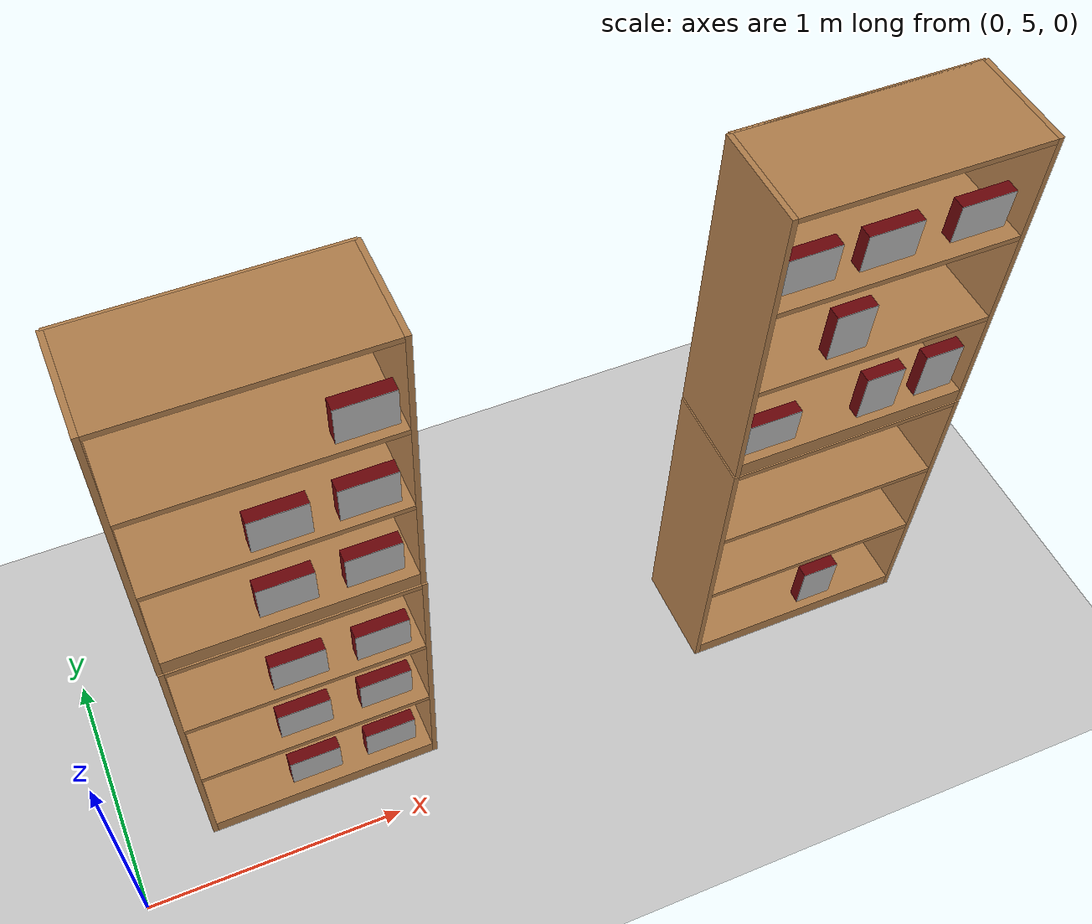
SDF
<sdf version="1.7">
 <world name="default">
  <model name="ground_plane">
   <static>1</static>
   <link name="link">
    <collision name="collision">
     <geometry><plane><normal>0 0 1</normal><size>100 100</size></plane></geometry>
     <surface><friction><ode><mu>100</mu><mu2>50</mu2></ode></friction></surface>
    </collision>
    <visual name="visual">
     <cast_shadows>0</cast_shadows>
     <geometry><plane><normal>0 0 1</normal><size>100 100</size></plane></geometry>
     <material>
      <script><uri>file://media/materials/scripts/gazebo.material</uri><name>Gazebo/Grey</name></script>
     </material>
    </visual>
   </link>
  </model>
  <model name="bookshelf">
   <static>1</static>
   <link name="link">
    <inertial><mass>1</mass></inertial>
    <collision name="back">
     <pose>0 0.005 0.6 0 -0 0</pose>
     <geometry><box><size>0.9 0.01 1.2</size></box></geometry>
    </collision>
    <visual name="visual1">
     <pose>0 0.005 0.6 0 -0 0</pose>
     <geometry><box><size>0.9 0.01 1.2</size></box></geometry>
     <material>
      <script><uri>file://media/materials/scripts/gazebo.material</uri><name>Gazebo/Wood</name></script>
     </material>
    </visual>
    <collision name="left_side">
     <pose>0.45 -0.195 0.6 0 -0 0</pose>
     <geometry><box><size>0.02 0.4 1.2</size></box></geometry>
    </collision>
    <visual name="visual2">
     <pose>0.45 -0.195 0.6 0 -0 0</pose>
     <geometry><box><size>0.02 0.4 1.2</size></box></geometry>
     <material>
      <script><uri>file://media/materials/scripts/gazebo.material</uri><name>Gazebo/Wood</name></script>
     </material>
    </visual>
    <collision name="right_side">
     <pose>-0.45 -0.195 0.6 0 -0 0</pose>
     <geometry><box><size>0.02 0.4 1.2</size></box></geometry>
    </collision>
    <visual name="visual3">
     <pose>-0.45 -0.195 0.6 0 -0 0</pose>
     <geometry><box><size>0.02 0.4 1.2</size></box></geometry>
     <material>
      <script><uri>file://media/materials/scripts/gazebo.material</uri><name>Gazebo/Wood</name></script>
     </material>
    </visual>
    <collision name="bottom">
     <pose>0 -0.195 0.03 0 -0 0</pose>
     <geometry><box><size>0.88 0.4 0.06</size></box></geometry>
    </collision>
    <visual name="visual4">
     <pose>0 -0.195 0.03 0 -0 0</pose>
     <geometry><box><size>0.88 0.4 0.06</size></box></geometry>
     <material>
      <script><uri>file://media/materials/scripts/gazebo.material</uri><name>Gazebo/Wood</name></script>
     </material>
    </visual>
    <collision name="top">
     <pose>0 -0.195 1.19 0 -0 0</pose>
     <geometry><box><size>0.88 0.4 0.02</size></box></geometry>
    </collision>
    <visual name="visual5">
     <pose>0 -0.195 1.19 0 -0 0</pose>
     <geometry><box><size>0.88 0.4 0.02</size></box></geometry>
     <material>
      <script><uri>file://media/materials/scripts/gazebo.material</uri><name>Gazebo/Wood</name></script>
     </material>
    </visual>
    <collision name="low_shelf">
     <pose>0 -0.195 0.43 0 -0 0</pose>
     <geometry><box><size>0.88 0.4 0.02</size></box></geometry>
    </collision>
    <visual name="visual6">
     <pose>0 -0.195 0.43 0 -0 0</pose>
     <geometry><box><size>0.88 0.4 0.02</size></box></geometry>
     <material>
      <script><uri>file://media/materials/scripts/gazebo.material</uri><name>Gazebo/Wood</name></script>
     </material>
    </visual>
    <collision name="high_shelf">
     <pose>0 -0.195 0.8 0 -0 0</pose>
     <geometry><box><size>0.88 0.4 0.02</size></box></geometry>
    </collision>
    <visual name="visual7">
     <pose>0 -0.195 0.8 0 -0 0</pose>
     <geometry><box><size>0.88 0.4 0.02</size></box></geometry>
     <material>
      <script><uri>file://media/materials/scripts/gazebo.material</uri><name>Gazebo/Wood</name></script>
     </material>
    </visual>
   </link>
   <pose>2.83268 5.58259 0 0 -0 0</pose>
  </model>
  <model name="bookshelf_1">
   <static>1</static>
   <link name="link">
    <inertial><mass>1</mass></inertial>
    <collision name="back">
     <pose>0 0.005 0.6 0 -0 0</pose>
     <geometry><box><size>0.9 0.01 1.2</size></box></geometry>
    </collision>
    <visual name="visual1">
     <pose>0 0.005 0.6 0 -0 0</pose>
     <geometry><box><size>0.9 0.01 1.2</size></box></geometry>
     <material>
      <script><uri>file://media/materials/scripts/gazebo.material</uri><name>Gazebo/Wood</name></script>
     </material>
    </visual>
    <collision name="left_side">
     <pose>0.45 -0.195 0.6 0 -0 0</pose>
     <geometry><box><size>0.02 0.4 1.2</size></box></geometry>
    </collision>
    <visual name="visual2">
     <pose>0.45 -0.195 0.6 0 -0 0</pose>
     <geometry><box><size>0.02 0.4 1.2</size></box></geometry>
     <material>
      <script><uri>file://media/materials/scripts/gazebo.material</uri><name>Gazebo/Wood</name></script>
     </material>
    </visual>
    <collision name="right_side">
     <pose>-0.45 -0.195 0.6 0 -0 0</pose>
     <geometry><box><size>0.02 0.4 1.2</size></box></geometry>
    </collision>
    <visual name="visual3">
     <pose>-0.45 -0.195 0.6 0 -0 0</pose>
     <geometry><box><size>0.02 0.4 1.2</size></box></geometry>
     <material>
      <script><uri>file://media/materials/scripts/gazebo.material</uri><name>Gazebo/Wood</name></script>
     </material>
    </visual>
    <collision name="bottom">
     <pose>0 -0.195 0.03 0 -0 0</pose>
     <geometry><box><size>0.88 0.4 0.06</size></box></geometry>
    </collision>
    <visual name="visual4">
     <pose>0 -0.195 0.03 0 -0 0</pose>
     <geometry><box><size>0.88 0.4 0.06</size></box></geometry>
     <material>
      <script><uri>file://media/materials/scripts/gazebo.material</uri><name>Gazebo/Wood</name></script>
     </material>
    </visual>
    <collision name="top">
     <pose>0 -0.195 1.19 0 -0 0</pose>
     <geometry><box><size>0.88 0.4 0.02</size></box></geometry>
    </collision>
    <visual name="visual5">
     <pose>0 -0.195 1.19 0 -0 0</pose>
     <geometry><box><size>0.88 0.4 0.02</size></box></geometry>
     <material>
      <script><uri>file://media/materials/scripts/gazebo.material</uri><name>Gazebo/Wood</name></script>
     </material>
    </visual>
    <collision name="low_shelf">
     <pose>0 -0.195 0.43 0 -0 0</pose>
     <geometry><box><size>0.88 0.4 0.02</size></box></geometry>
    </collision>
    <visual name="visual6">
     <pose>0 -0.195 0.43 0 -0 0</pose>
     <geometry><box><size>0.88 0.4 0.02</size></box></geometry>
     <material>
      <script><uri>file://media/materials/scripts/gazebo.material</uri><name>Gazebo/Wood</name></script>
     </material>
    </visual>
    <collision name="high_shelf">
     <pose>0 -0.195 0.8 0 -0 0</pose>
     <geometry><box><size>0.88 0.4 0.02</size></box></geometry>
    </collision>
    <visual name="visual7">
     <pose>0 -0.195 0.8 0 -0 0</pose>
     <geometry><box><size>0.88 0.4 0.02</size></box></geometry>
     <material>
      <script><uri>file://media/materials/scripts/gazebo.material</uri><name>Gazebo/Wood</name></script>
     </material>
    </visual>
   </link>
   <pose>0.770602 5.5901 0 0 -0 0</pose>
  </model>
  <model name="bookshelf_3_clone_clone_0">
   <static>1</static>
   <link name="link">
    <inertial><mass>1</mass></inertial>
    <collision name="back">
     <pose>0 0.005 0.6 0 -0 0</pose>
     <geometry><box><size>0.9 0.01 1.2</size></box></geometry>
    </collision>
    <visual name="visual1">
     <pose>0 0.005 0.6 0 -0 0</pose>
     <geometry><box><size>0.9 0.01 1.2</size></box></geometry>
     <material>
      <script><uri>file://media/materials/scripts/gazebo.material</uri><name>Gazebo/Wood</name></script>
     </material>
    </visual>
    <collision name="left_side">
     <pose>0.45 -0.195 0.6 0 -0 0</pose>
     <geometry><box><size>0.02 0.4 1.2</size></box></geometry>
    </collision>
    <visual name="visual2">
     <pose>0.45 -0.195 0.6 0 -0 0</pose>
     <geometry><box><size>0.02 0.4 1.2</size></box></geometry>
     <material>
      <script><uri>file://media/materials/scripts/gazebo.material</uri><name>Gazebo/Wood</name></script>
     </material>
    </visual>
    <collision name="right_side">
     <pose>-0.45 -0.195 0.6 0 -0 0</pose>
     <geometry><box><size>0.02 0.4 1.2</size></box></geometry>
    </collision>
    <visual name="visual3">
     <pose>-0.45 -0.195 0.6 0 -0 0</pose>
     <geometry><box><size>0.02 0.4 1.2</size></box></geometry>
     <material>
      <script><uri>file://media/materials/scripts/gazebo.material</uri><name>Gazebo/Wood</name></script>
     </material>
    </visual>
    <collision name="bottom">
     <pose>0 -0.195 0.03 0 -0 0</pose>
     <geometry><box><size>0.88 0.4 0.06</size></box></geometry>
    </collision>
    <visual name="visual4">
     <pose>0 -0.195 0.03 0 -0 0</pose>
     <geometry><box><size>0.88 0.4 0.06</size></box></geometry>
     <material>
      <script><uri>file://media/materials/scripts/gazebo.material</uri><name>Gazebo/Wood</name></script>
     </material>
    </visual>
    <collision name="top">
     <pose>0 -0.195 1.19 0 -0 0</pose>
     <geometry><box><size>0.88 0.4 0.02</size></box></geometry>
    </collision>
    <visual name="visual5">
     <pose>0 -0.195 1.19 0 -0 0</pose>
     <geometry><box><size>0.88 0.4 0.02</size></box></geometry>
     <material>
      <script><uri>file://media/materials/scripts/gazebo.material</uri><name>Gazebo/Wood</name></script>
     </material>
    </visual>
    <collision name="low_shelf">
     <pose>0 -0.195 0.43 0 -0 0</pose>
     <geometry><box><size>0.88 0.4 0.02</size></box></geometry>
    </collision>
    <visual name="visual6">
     <pose>0 -0.195 0.43 0 -0 0</pose>
     <geometry><box><size>0.88 0.4 0.02</size></box></geometry>
     <material>
      <script><uri>file://media/materials/scripts/gazebo.material</uri><name>Gazebo/Wood</name></script>
     </material>
    </visual>
    <collision name="high_shelf">
     <pose>0 -0.195 0.8 0 -0 0</pose>
     <geometry><box><size>0.88 0.4 0.02</size></box></geometry>
    </collision>
    <visual name="visual7">
     <pose>0 -0.195 0.8 0 -0 0</pose>
     <geometry><box><size>0.88 0.4 0.02</size></box></geometry>
     <material>
      <script><uri>file://media/materials/scripts/gazebo.material</uri><name>Gazebo/Wood</name></script>
     </material>
    </visual>
   </link>
   <pose>0.76852 5.59426 1.20481 0 -0 0</pose>
  </model>
  <model name="bookshelf_3_clone_clone_1">
   <static>1</static>
   <link name="link">
    <inertial><mass>1</mass></inertial>
    <collision name="back">
     <pose>0 0.005 0.6 0 -0 0</pose>
     <geometry><box><size>0.9 0.01 1.2</size></box></geometry>
    </collision>
    <visual name="visual1">
     <pose>0 0.005 0.6 0 -0 0</pose>
     <geometry><box><size>0.9 0.01 1.2</size></box></geometry>
     <material>
      <script><uri>file://media/materials/scripts/gazebo.material</uri><name>Gazebo/Wood</name></script>
     </material>
    </visual>
    <collision name="left_side">
     <pose>0.45 -0.195 0.6 0 -0 0</pose>
     <geometry><box><size>0.02 0.4 1.2</size></box></geometry>
    </collision>
    <visual name="visual2">
     <pose>0.45 -0.195 0.6 0 -0 0</pose>
     <geometry><box><size>0.02 0.4 1.2</size></box></geometry>
     <material>
      <script><uri>file://media/materials/scripts/gazebo.material</uri><name>Gazebo/Wood</name></script>
     </material>
    </visual>
    <collision name="right_side">
     <pose>-0.45 -0.195 0.6 0 -0 0</pose>
     <geometry><box><size>0.02 0.4 1.2</size></box></geometry>
    </collision>
    <visual name="visual3">
     <pose>-0.45 -0.195 0.6 0 -0 0</pose>
     <geometry><box><size>0.02 0.4 1.2</size></box></geometry>
     <material>
      <script><uri>file://media/materials/scripts/gazebo.material</uri><name>Gazebo/Wood</name></script>
     </material>
    </visual>
    <collision name="bottom">
     <pose>0 -0.195 0.03 0 -0 0</pose>
     <geometry><box><size>0.88 0.4 0.06</size></box></geometry>
    </collision>
    <visual name="visual4">
     <pose>0 -0.195 0.03 0 -0 0</pose>
     <geometry><box><size>0.88 0.4 0.06</size></box></geometry>
     <material>
      <script><uri>file://media/materials/scripts/gazebo.material</uri><name>Gazebo/Wood</name></script>
     </material>
    </visual>
    <collision name="top">
     <pose>0 -0.195 1.19 0 -0 0</pose>
     <geometry><box><size>0.88 0.4 0.02</size></box></geometry>
    </collision>
    <visual name="visual5">
     <pose>0 -0.195 1.19 0 -0 0</pose>
     <geometry><box><size>0.88 0.4 0.02</size></box></geometry>
     <material>
      <script><uri>file://media/materials/scripts/gazebo.material</uri><name>Gazebo/Wood</name></script>
     </material>
    </visual>
    <collision name="low_shelf">
     <pose>0 -0.195 0.43 0 -0 0</pose>
     <geometry><box><size>0.88 0.4 0.02</size></box></geometry>
    </collision>
    <visual name="visual6">
     <pose>0 -0.195 0.43 0 -0 0</pose>
     <geometry><box><size>0.88 0.4 0.02</size></box></geometry>
     <material>
      <script><uri>file://media/materials/scripts/gazebo.material</uri><name>Gazebo/Wood</name></script>
     </material>
    </visual>
    <collision name="high_shelf">
     <pose>0 -0.195 0.8 0 -0 0</pose>
     <geometry><box><size>0.88 0.4 0.02</size></box></geometry>
    </collision>
    <visual name="visual7">
     <pose>0 -0.195 0.8 0 -0 0</pose>
     <geometry><box><size>0.88 0.4 0.02</size></box></geometry>
     <material>
      <script><uri>file://media/materials/scripts/gazebo.material</uri><name>Gazebo/Wood</name></script>
     </material>
    </visual>
   </link>
   <pose>2.83627 5.58516 1.20481 0 -0 0</pose>
  </model>
  <model name="biscuit_box_clone">
   <link name="link">
    <pose>0 0 0.025 0 -0 0</pose>
    <visual name="visual">
     <geometry><box><size>0.2 0.15 0.05</size></box></geometry>
     <material>
      <ambient>0.423 0.019 0.035 1</ambient>
      <diffuse>0.423 0.019 0.035 1</diffuse>
      <specular>0.01 0.01 0.01 1</specular>
      <emissive>0 0 0 1</emissive>
     </material>
    </visual>
    <collision name="collision"><geometry><box><size>0.1 0.1 0.15</size></box></geometry></collision>
   </link>
   <link name="link_1">
    <pose>0 0 0.05 0 -0 0</pose>
    <visual name="visual">
     <geometry><box><size>0.2 0.15 0.001</size></box></geometry>
     <material>
      <script>
       <uri>model://biscuit_box/materials/scripts</uri>
       <uri>model://biscuit_box/materials/textures</uri>
       <name>biscuit_pat</name>
      </script>
     </material>
    </visual>
    <collision name="collision"><geometry><box><size>0.1 0.1 0.15</size></box></geometry></collision>
   </link>
   <static>1</static>
   <pose>0.756443 5.29336 0.137981 1.59184 -0 0</pose>
  </model>
  <model name="biscuit_box_clone_clone">
   <link name="link">
    <pose>0 0 0.025 0 -0 0</pose>
    <visual name="visual">
     <geometry><box><size>0.2 0.15 0.05</size></box></geometry>
     <material>
      <ambient>0.423 0.019 0.035 1</ambient>
      <diffuse>0.423 0.019 0.035 1</diffuse>
      <specular>0.01 0.01 0.01 1</specular>
      <emissive>0 0 0 1</emissive>
     </material>
    </visual>
    <collision name="collision"><geometry><box><size>0.1 0.1 0.15</size></box></geometry></collision>
   </link>
   <link name="link_1">
    <pose>0 0 0.05 0 -0 0</pose>
    <visual name="visual">
     <geometry><box><size>0.2 0.15 0.001</size></box></geometry>
     <material>
      <script>
       <uri>model://biscuit_box/materials/scripts</uri>
       <uri>model://biscuit_box/materials/textures</uri>
       <name>biscuit_pat</name>
      </script>
     </material>
    </visual>
    <collision name="collision"><geometry><box><size>0.1 0.1 0.15</size></box></geometry></collision>
   </link>
   <static>1</static>
   <pose>1.062 5.29498 0.137981 1.59184 -0 0</pose>
  </model>
  <model name="biscuit_box_clone_0_clone">
   <link name="link">
    <pose>0 0 0.025 0 -0 0</pose>
    <visual name="visual">
     <geometry><box><size>0.2 0.15 0.05</size></box></geometry>
     <material>
      <ambient>0.423 0.019 0.035 1</ambient>
      <diffuse>0.423 0.019 0.035 1</diffuse>
      <specular>0.01 0.01 0.01 1</specular>
      <emissive>0 0 0 1</emissive>
     </material>
    </visual>
    <collision name="collision"><geometry><box><size>0.1 0.1 0.15</size></box></geometry></collision>
   </link>
   <link name="link_1">
    <pose>0 0 0.05 0 -0 0</pose>
    <visual name="visual">
     <geometry><box><size>0.2 0.15 0.001</size></box></geometry>
     <material>
      <script>
       <uri>model://biscuit_box/materials/scripts</uri>
       <uri>model://biscuit_box/materials/textures</uri>
       <name>biscuit_pat</name>
      </script>
     </material>
    </visual>
    <collision name="collision"><geometry><box><size>0.1 0.1 0.15</size></box></geometry></collision>
   </link>
   <static>1</static>
   <pose>0.752248 5.29333 0.517024 1.59184 -0 0</pose>
  </model>
  <model name="biscuit_box_clone_0_clone_clone">
   <link name="link">
    <pose>0 0 0.025 0 -0 0</pose>
    <visual name="visual">
     <geometry><box><size>0.2 0.15 0.05</size></box></geometry>
     <material>
      <ambient>0.423 0.019 0.035 1</ambient>
      <diffuse>0.423 0.019 0.035 1</diffuse>
      <specular>0.01 0.01 0.01 1</specular>
      <emissive>0 0 0 1</emissive>
     </material>
    </visual>
    <collision name="collision"><geometry><box><size>0.1 0.1 0.15</size></box></geometry></collision>
   </link>
   <link name="link_1">
    <pose>0 0 0.05 0 -0 0</pose>
    <visual name="visual">
     <geometry><box><size>0.2 0.15 0.001</size></box></geometry>
     <material>
      <script>
       <uri>model://biscuit_box/materials/scripts</uri>
       <uri>model://biscuit_box/materials/textures</uri>
       <name>biscuit_pat</name>
      </script>
     </material>
    </visual>
    <collision name="collision"><geometry><box><size>0.1 0.1 0.15</size></box></geometry></collision>
   </link>
   <static>1</static>
   <pose>1.06428 5.29499 0.517024 1.59184 -0 0</pose>
  </model>
  <model name="biscuit_box_clone_clone_clone_clone_clone_0">
   <link name="link">
    <pose>0 0 0.025 0 -0 0</pose>
    <visual name="visual">
     <geometry><box><size>0.2 0.15 0.05</size></box></geometry>
     <material>
      <ambient>0.423 0.019 0.035 1</ambient>
      <diffuse>0.423 0.019 0.035 1</diffuse>
      <specular>0.01 0.01 0.01 1</specular>
      <emissive>0 0 0 1</emissive>
     </material>
    </visual>
    <collision name="collision"><geometry><box><size>0.1 0.1 0.15</size></box></geometry></collision>
   </link>
   <link name="link_1">
    <pose>0 0 0.05 0 -0 0</pose>
    <visual name="visual">
     <geometry><box><size>0.2 0.15 0.001</size></box></geometry>
     <material>
      <script>
       <uri>model://biscuit_box/materials/scripts</uri>
       <uri>model://biscuit_box/materials/textures</uri>
       <name>biscuit_pat</name>
      </script>
     </material>
    </visual>
    <collision name="collision"><geometry><box><size>0.1 0.1 0.15</size></box></geometry></collision>
   </link>
   <static>1</static>
   <pose>2.93276 5.26818 0.162905 -2.92419 -1.54924 -1.78824</pose>
  </model>
  <model name="biscuit_box_clone_0_clone_0_clone">
   <link name="link">
    <pose>0 0 0.025 0 -0 0</pose>
    <visual name="visual">
     <geometry><box><size>0.2 0.15 0.05</size></box></geometry>
     <material>
      <ambient>0.423 0.019 0.035 1</ambient>
      <diffuse>0.423 0.019 0.035 1</diffuse>
      <specular>0.01 0.01 0.01 1</specular>
      <emissive>0 0 0 1</emissive>
     </material>
    </visual>
    <collision name="collision"><geometry><box><size>0.1 0.1 0.15</size></box></geometry></collision>
   </link>
   <link name="link_1">
    <pose>0 0 0.05 0 -0 0</pose>
    <visual name="visual">
     <geometry><box><size>0.2 0.15 0.001</size></box></geometry>
     <material>
      <script>
       <uri>model://biscuit_box/materials/scripts</uri>
       <uri>model://biscuit_box/materials/textures</uri>
       <name>biscuit_pat</name>
      </script>
     </material>
    </visual>
    <collision name="collision"><geometry><box><size>0.1 0.1 0.15</size></box></geometry></collision>
   </link>
   <static>1</static>
   <pose>0.763462 5.2801 0.888325 1.59184 -0 0</pose>
  </model>
  <model name="biscuit_box_clone_0_clone_0_clone_0">
   <link name="link">
    <pose>0 0 0.025 0 -0 0</pose>
    <visual name="visual">
     <geometry><box><size>0.2 0.15 0.05</size></box></geometry>
     <material>
      <ambient>0.423 0.019 0.035 1</ambient>
      <diffuse>0.423 0.019 0.035 1</diffuse>
      <specular>0.01 0.01 0.01 1</specular>
      <emissive>0 0 0 1</emissive>
     </material>
    </visual>
    <collision name="collision"><geometry><box><size>0.1 0.1 0.15</size></box></geometry></collision>
   </link>
   <link name="link_1">
    <pose>0 0 0.05 0 -0 0</pose>
    <visual name="visual">
     <geometry><box><size>0.2 0.15 0.001</size></box></geometry>
     <material>
      <script>
       <uri>model://biscuit_box/materials/scripts</uri>
       <uri>model://biscuit_box/materials/textures</uri>
       <name>biscuit_pat</name>
      </script>
     </material>
    </visual>
    <collision name="collision"><geometry><box><size>0.1 0.1 0.15</size></box></geometry></collision>
   </link>
   <static>1</static>
   <pose>1.06906 5.27977 0.888325 1.59184 -0 0</pose>
  </model>
  <model name="biscuit_box_clone_0_clone_0_clone_1">
   <link name="link">
    <pose>0 0 0.025 0 -0 0</pose>
    <visual name="visual">
     <geometry><box><size>0.2 0.15 0.05</size></box></geometry>
     <material>
      <ambient>0.423 0.019 0.035 1</ambient>
      <diffuse>0.423 0.019 0.035 1</diffuse>
      <specular>0.01 0.01 0.01 1</specular>
      <emissive>0 0 0 1</emissive>
     </material>
    </visual>
    <collision name="collision"><geometry><box><size>0.1 0.1 0.15</size></box></geometry></collision>
   </link>
   <link name="link_1">
    <pose>0 0 0.05 0 -0 0</pose>
    <visual name="visual">
     <geometry><box><size>0.2 0.15 0.001</size></box></geometry>
     <material>
      <script>
       <uri>model://biscuit_box/materials/scripts</uri>
       <uri>model://biscuit_box/materials/textures</uri>
       <name>biscuit_pat</name>
      </script>
     </material>
    </visual>
    <collision name="collision"><geometry><box><size>0.1 0.1 0.15</size></box></geometry></collision>
   </link>
   <static>1</static>
   <pose>0.773197 5.28722 1.34511 1.59184 -0 0</pose>
  </model>
  <model name="biscuit_box_clone_0_clone_0_clone_2">
   <link name="link">
    <pose>0 0 0.025 0 -0 0</pose>
    <visual name="visual">
     <geometry><box><size>0.2 0.15 0.05</size></box></geometry>
     <material>
      <ambient>0.423 0.019 0.035 1</ambient>
      <diffuse>0.423 0.019 0.035 1</diffuse>
      <specular>0.01 0.01 0.01 1</specular>
      <emissive>0 0 0 1</emissive>
     </material>
    </visual>
    <collision name="collision"><geometry><box><size>0.1 0.1 0.15</size></box></geometry></collision>
   </link>
   <link name="link_1">
    <pose>0 0 0.05 0 -0 0</pose>
    <visual name="visual">
     <geometry><box><size>0.2 0.15 0.001</size></box></geometry>
     <material>
      <script>
       <uri>model://biscuit_box/materials/scripts</uri>
       <uri>model://biscuit_box/materials/textures</uri>
       <name>biscuit_pat</name>
      </script>
     </material>
    </visual>
    <collision name="collision"><geometry><box><size>0.1 0.1 0.15</size></box></geometry></collision>
   </link>
   <static>1</static>
   <pose>0.789359 5.27296 1.72474 1.59184 -0 0</pose>
  </model>
  <model name="biscuit_box_clone_0_clone_0_clone_1_clone">
   <link name="link">
    <pose>0 0 0.025 0 -0 0</pose>
    <visual name="visual">
     <geometry><box><size>0.2 0.15 0.05</size></box></geometry>
     <material>
      <ambient>0.423 0.019 0.035 1</ambient>
      <diffuse>0.423 0.019 0.035 1</diffuse>
      <specular>0.01 0.01 0.01 1</specular>
      <emissive>0 0 0 1</emissive>
     </material>
    </visual>
    <collision name="collision"><geometry><box><size>0.1 0.1 0.15</size></box></geometry></collision>
   </link>
   <link name="link_1">
    <pose>0 0 0.05 0 -0 0</pose>
    <visual name="visual">
     <geometry><box><size>0.2 0.15 0.001</size></box></geometry>
     <material>
      <script>
       <uri>model://biscuit_box/materials/scripts</uri>
       <uri>model://biscuit_box/materials/textures</uri>
       <name>biscuit_pat</name>
      </script>
     </material>
    </visual>
    <collision name="collision"><geometry><box><size>0.1 0.1 0.15</size></box></geometry></collision>
   </link>
   <static>1</static>
   <pose>1.06994 5.28691 1.34511 1.59184 -0 0</pose>
  </model>
  <model name="biscuit_box_clone_0_clone_0_clone_2_clone">
   <link name="link">
    <pose>0 0 0.025 0 -0 0</pose>
    <visual name="visual">
     <geometry><box><size>0.2 0.15 0.05</size></box></geometry>
     <material>
      <ambient>0.423 0.019 0.035 1</ambient>
      <diffuse>0.423 0.019 0.035 1</diffuse>
      <specular>0.01 0.01 0.01 1</specular>
      <emissive>0 0 0 1</emissive>
     </material>
    </visual>
    <collision name="collision"><geometry><box><size>0.1 0.1 0.15</size></box></geometry></collision>
   </link>
   <link name="link_1">
    <pose>0 0 0.05 0 -0 0</pose>
    <visual name="visual">
     <geometry><box><size>0.2 0.15 0.001</size></box></geometry>
     <material>
      <script>
       <uri>model://biscuit_box/materials/scripts</uri>
       <uri>model://biscuit_box/materials/textures</uri>
       <name>biscuit_pat</name>
      </script>
     </material>
    </visual>
    <collision name="collision"><geometry><box><size>0.1 0.1 0.15</size></box></geometry></collision>
   </link>
   <static>1</static>
   <pose>1.07517 5.27977 1.72474 1.59184 -0 0</pose>
  </model>
  <model name="biscuit_box_clone_0_clone_0_clone_3_clone">
   <link name="link">
    <pose>0 0 0.025 0 -0 0</pose>
    <visual name="visual">
     <geometry><box><size>0.2 0.15 0.05</size></box></geometry>
     <material>
      <ambient>0.423 0.019 0.035 1</ambient>
      <diffuse>0.423 0.019 0.035 1</diffuse>
      <specular>0.01 0.01 0.01 1</specular>
      <emissive>0 0 0 1</emissive>
     </material>
    </visual>
    <collision name="collision"><geometry><box><size>0.1 0.1 0.15</size></box></geometry></collision>
   </link>
   <link name="link_1">
    <pose>0 0 0.05 0 -0 0</pose>
    <visual name="visual">
     <geometry><box><size>0.2 0.15 0.001</size></box></geometry>
     <material>
      <script>
       <uri>model://biscuit_box/materials/scripts</uri>
       <uri>model://biscuit_box/materials/textures</uri>
       <name>biscuit_pat</name>
      </script>
     </material>
    </visual>
    <collision name="collision"><geometry><box><size>0.1 0.1 0.15</size></box></geometry></collision>
   </link>
   <static>1</static>
   <pose>1.09044 5.27975 2.09346 1.59184 -0 0</pose>
  </model>
  <model name="biscuit_box_clone_clone_clone_clone_clone_1_clone_clone_1_clone">
   <link name="link">
    <pose>0 0 0.025 0 -0 0</pose>
    <visual name="visual">
     <geometry><box><size>0.2 0.15 0.05</size></box></geometry>
     <material>
      <ambient>0.423 0.019 0.035 1</ambient>
      <diffuse>0.423 0.019 0.035 1</diffuse>
      <specular>0.01 0.01 0.01 1</specular>
      <emissive>0 0 0 1</emissive>
     </material>
    </visual>
    <collision name="collision"><geometry><box><size>0.1 0.1 0.15</size></box></geometry></collision>
   </link>
   <link name="link_1">
    <pose>0 0 0.05 0 -0 0</pose>
    <visual name="visual">
     <geometry><box><size>0.2 0.15 0.001</size></box></geometry>
     <material>
      <script>
       <uri>model://biscuit_box/materials/scripts</uri>
       <uri>model://biscuit_box/materials/textures</uri>
       <name>biscuit_pat</name>
      </script>
     </material>
    </visual>
    <collision name="collision"><geometry><box><size>0.1 0.1 0.15</size></box></geometry></collision>
   </link>
   <static>1</static>
   <pose>2.94144 5.26953 1.36753 -2.92419 -1.54924 -1.78824</pose>
  </model>
  <model name="biscuit_box_clone_clone_clone_clone_clone_1_clone_clone_1_clone_0">
   <link name="link">
    <pose>0 0 0.025 0 -0 0</pose>
    <visual name="visual">
     <geometry><box><size>0.2 0.15 0.05</size></box></geometry>
     <material>
      <ambient>0.423 0.019 0.035 1</ambient>
      <diffuse>0.423 0.019 0.035 1</diffuse>
      <specular>0.01 0.01 0.01 1</specular>
      <emissive>0 0 0 1</emissive>
     </material>
    </visual>
    <collision name="collision"><geometry><box><size>0.1 0.1 0.15</size></box></geometry></collision>
   </link>
   <link name="link_1">
    <pose>0 0 0.05 0 -0 0</pose>
    <visual name="visual">
     <geometry><box><size>0.2 0.15 0.001</size></box></geometry>
     <material>
      <script>
       <uri>model://biscuit_box/materials/scripts</uri>
       <uri>model://biscuit_box/materials/textures</uri>
       <name>biscuit_pat</name>
      </script>
     </material>
    </visual>
    <collision name="collision"><geometry><box><size>0.1 0.1 0.15</size></box></geometry></collision>
   </link>
   <static>1</static>
   <pose>3.18322 5.27953 1.36753 -2.92419 -1.54924 -1.78824</pose>
  </model>
  <model name="biscuit_box_clone_clone_clone_clone_clone_1_clone_clone_1_clone_1">
   <link name="link">
    <pose>0 0 0.025 0 -0 0</pose>
    <visual name="visual">
     <geometry><box><size>0.2 0.15 0.05</size></box></geometry>
     <material>
      <ambient>0.423 0.019 0.035 1</ambient>
      <diffuse>0.423 0.019 0.035 1</diffuse>
      <specular>0.01 0.01 0.01 1</specular>
      <emissive>0 0 0 1</emissive>
     </material>
    </visual>
    <collision name="collision"><geometry><box><size>0.1 0.1 0.15</size></box></geometry></collision>
   </link>
   <link name="link_1">
    <pose>0 0 0.05 0 -0 0</pose>
    <visual name="visual">
     <geometry><box><size>0.2 0.15 0.001</size></box></geometry>
     <material>
      <script>
       <uri>model://biscuit_box/materials/scripts</uri>
       <uri>model://biscuit_box/materials/textures</uri>
       <name>biscuit_pat</name>
      </script>
     </material>
    </visual>
    <collision name="collision"><geometry><box><size>0.1 0.1 0.15</size></box></geometry></collision>
   </link>
   <static>1</static>
   <pose>2.74403 5.2783 1.75021 -2.92419 -1.54924 -1.78824</pose>
  </model>
  <model name="biscuit_box_clone_0_clone_0_clone_3_clone_1">
   <link name="link">
    <pose>0 0 0.025 0 -0 0</pose>
    <visual name="visual">
     <geometry><box><size>0.2 0.15 0.05</size></box></geometry>
     <material>
      <ambient>0.423 0.019 0.035 1</ambient>
      <diffuse>0.423 0.019 0.035 1</diffuse>
      <specular>0.01 0.01 0.01 1</specular>
      <emissive>0 0 0 1</emissive>
     </material>
    </visual>
    <collision name="collision"><geometry><box><size>0.1 0.1 0.15</size></box></geometry></collision>
   </link>
   <link name="link_1">
    <pose>0 0 0.05 0 -0 0</pose>
    <visual name="visual">
     <geometry><box><size>0.2 0.15 0.001</size></box></geometry>
     <material>
      <script>
       <uri>model://biscuit_box/materials/scripts</uri>
       <uri>model://biscuit_box/materials/textures</uri>
       <name>biscuit_pat</name>
      </script>
     </material>
    </visual>
    <collision name="collision"><geometry><box><size>0.1 0.1 0.15</size></box></geometry></collision>
   </link>
   <static>1</static>
   <pose>2.53168 5.2983 2.09346 1.59184 -0 0</pose>
  </model>
  <model name="biscuit_box_clone_0_clone_0_clone_3_clone_2">
   <link name="link">
    <pose>0 0 0.025 0 -0 0</pose>
    <visual name="visual">
     <geometry><box><size>0.2 0.15 0.05</size></box></geometry>
     <material>
      <ambient>0.423 0.019 0.035 1</ambient>
      <diffuse>0.423 0.019 0.035 1</diffuse>
      <specular>0.01 0.01 0.01 1</specular>
      <emissive>0 0 0 1</emissive>
     </material>
    </visual>
    <collision name="collision"><geometry><box><size>0.1 0.1 0.15</size></box></geometry></collision>
   </link>
   <link name="link_1">
    <pose>0 0 0.05 0 -0 0</pose>
    <visual name="visual">
     <geometry><box><size>0.2 0.15 0.001</size></box></geometry>
     <material>
      <script>
       <uri>model://biscuit_box/materials/scripts</uri>
       <uri>model://biscuit_box/materials/textures</uri>
       <name>biscuit_pat</name>
      </script>
     </material>
    </visual>
    <collision name="collision"><geometry><box><size>0.1 0.1 0.15</size></box></geometry></collision>
   </link>
   <static>1</static>
   <pose>2.81809 5.29479 2.09346 1.59184 -0 0</pose>
  </model>
  <model name="biscuit_box_clone_0_clone_0_clone_3_clone_3">
   <link name="link">
    <pose>0 0 0.025 0 -0 0</pose>
    <visual name="visual">
     <geometry><box><size>0.2 0.15 0.05</size></box></geometry>
     <material>
      <ambient>0.423 0.019 0.035 1</ambient>
      <diffuse>0.423 0.019 0.035 1</diffuse>
      <specular>0.01 0.01 0.01 1</specular>
      <emissive>0 0 0 1</emissive>
     </material>
    </visual>
    <collision name="collision"><geometry><box><size>0.1 0.1 0.15</size></box></geometry></collision>
   </link>
   <link name="link_1">
    <pose>0 0 0.05 0 -0 0</pose>
    <visual name="visual">
     <geometry><box><size>0.2 0.15 0.001</size></box></geometry>
     <material>
      <script>
       <uri>model://biscuit_box/materials/scripts</uri>
       <uri>model://biscuit_box/materials/textures</uri>
       <name>biscuit_pat</name>
      </script>
     </material>
    </visual>
    <collision name="collision"><geometry><box><size>0.1 0.1 0.15</size></box></geometry></collision>
   </link>
   <static>1</static>
   <pose>3.14994 5.29639 2.09346 1.59184 -0 0</pose>
  </model>
  <model name="biscuit_box_clone_0_clone_0_clone_1_clone_1">
   <link name="link">
    <pose>0 0 0.025 0 -0 0</pose>
    <visual name="visual">
     <geometry><box><size>0.2 0.15 0.05</size></box></geometry>
     <material>
      <ambient>0.423 0.019 0.035 1</ambient>
      <diffuse>0.423 0.019 0.035 1</diffuse>
      <specular>0.01 0.01 0.01 1</specular>
      <emissive>0 0 0 1</emissive>
     </material>
    </visual>
    <collision name="collision"><geometry><box><size>0.1 0.1 0.15</size></box></geometry></collision>
   </link>
   <link name="link_1">
    <pose>0 0 0.05 0 -0 0</pose>
    <visual name="visual">
     <geometry><box><size>0.2 0.15 0.001</size></box></geometry>
     <material>
      <script>
       <uri>model://biscuit_box/materials/scripts</uri>
       <uri>model://biscuit_box/materials/textures</uri>
       <name>biscuit_pat</name>
      </script>
     </material>
    </visual>
    <collision name="collision"><geometry><box><size>0.1 0.1 0.15</size></box></geometry></collision>
   </link>
   <static>1</static>
   <pose>2.52004 5.27134 1.34511 1.59184 -0 0</pose>
  </model>
 </world>
</sdf>
